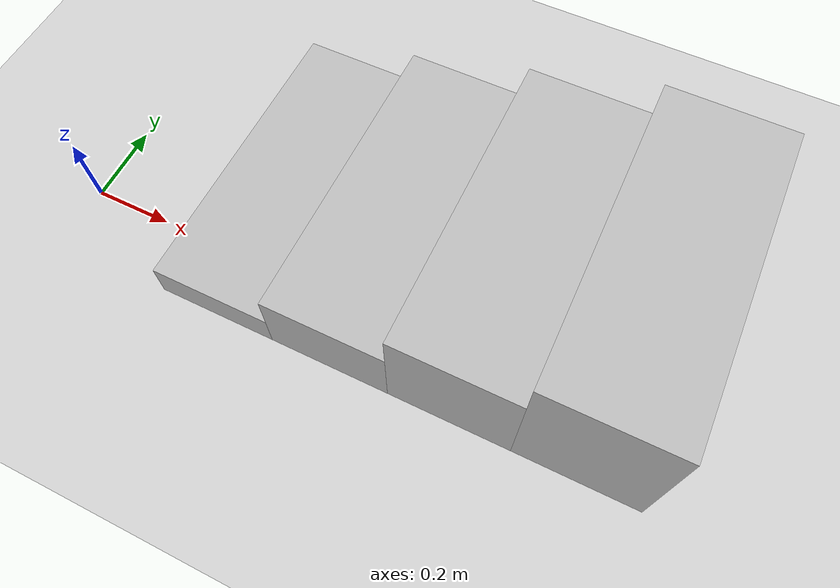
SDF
<?xml version="1.0" ?>
<sdf version="1.4">
  <world name="default">
    <physics type="ode">
      <gravity>0 0 -9.81</gravity>
      <ode>
        <solver>
          <type>quick</type>
          <iters>50</iters>
          <sor>1.4</sor>
        </solver>
        <constraints>
          <cfm>0.0</cfm>
          <erp>0.2</erp>
          <contact_max_correcting_vel>100.0</contact_max_correcting_vel>
          <contact_surface_layer>0.0</contact_surface_layer>
        </constraints>
      </ode>
      <real_time_update_rate>1000</real_time_update_rate>
      <max_step_size>0.001</max_step_size>
    </physics>
    <!-- A global light source -->
    <include>
      <uri>model://sun</uri>
    </include>
    <!-- A ground plane -->
    <include>
      <uri>model://ground_plane</uri>
    </include>

    <model name="box_1_model">
      <pose>0.45 0.22 0.05 0 0 0</pose>
      <static>true</static>
      <link name="box_1_body">
        <inertial>
          <mass>1.0</mass>
          <inertia>
            <ixx>1.0</ixx>
            <ixy>0.0</ixy>
            <ixz>0.0</ixz>
            <iyy>1.0</iyy>
            <iyz>0.0</iyz>
            <izz>1.0</izz>
          </inertia>
        </inertial>
        <collision name="collision">
          <geometry>
            <box>
              <size>0.3 0.76 0.1</size>
            </box>
          </geometry>
        </collision>
        <visual name="visual">
          <geometry>
            <box>
              <size>0.3 0.76 0.1</size>
            </box>
          </geometry>
        </visual>
      </link>
    </model>

    <model name="box_2_model">
      <pose>0.75 0.22 0.1 0 0 0</pose>
      <static>true</static>
      <link name="box_1_body">
        <inertial>
          <mass>1.0</mass>
          <inertia>
            <ixx>1.0</ixx>
            <ixy>0.0</ixy>
            <ixz>0.0</ixz>
            <iyy>1.0</iyy>
            <iyz>0.0</iyz>
            <izz>1.0</izz>
          </inertia>
        </inertial>
        <collision name="collision">
          <geometry>
            <box>
              <size>0.3 0.76 0.2</size>
            </box>
          </geometry>
        </collision>
        <visual name="visual">
          <geometry>
            <box>
              <size>0.3 0.76 0.2</size>
            </box>
          </geometry>
        </visual>
      </link>
    </model>

    <model name="box_3_model">
      <pose>1.05 0.22 0.15 0 0 0</pose>
      <static>true</static>
      <link name="box_1_body">
        <inertial>
          <mass>1.0</mass>
          <inertia>
            <ixx>1.0</ixx>
            <ixy>0.0</ixy>
            <ixz>0.0</ixz>
            <iyy>1.0</iyy>
            <iyz>0.0</iyz>
            <izz>1.0</izz>
          </inertia>
        </inertial>
        <collision name="collision">
          <geometry>
            <box>
              <size>0.3 0.76 0.3</size>
            </box>
          </geometry>
        </collision>
        <visual name="visual">
          <geometry>
            <box>
              <size>0.3 0.76 0.3</size>
            </box>
          </geometry>
        </visual>
      </link>
    </model>

    <model name="box_4_model">
      <pose>1.35 0.22 0.2 0 0 0</pose>
      <static>true</static>
      <link name="box_1_body">
        <inertial>
          <mass>1.0</mass>
          <inertia>
            <ixx>1.0</ixx>
            <ixy>0.0</ixy>
            <ixz>0.0</ixz>
            <iyy>1.0</iyy>
            <iyz>0.0</iyz>
            <izz>1.0</izz>
          </inertia>
        </inertial>
        <collision name="collision">
          <geometry>
            <box>
              <size>0.3 0.76 0.4</size>
            </box>
          </geometry>
        </collision>
        <visual name="visual">
          <geometry>
            <box>
              <size>0.3 0.76 0.4</size>
            </box>
          </geometry>
        </visual>
      </link>
    </model>

  </world>
</sdf>
